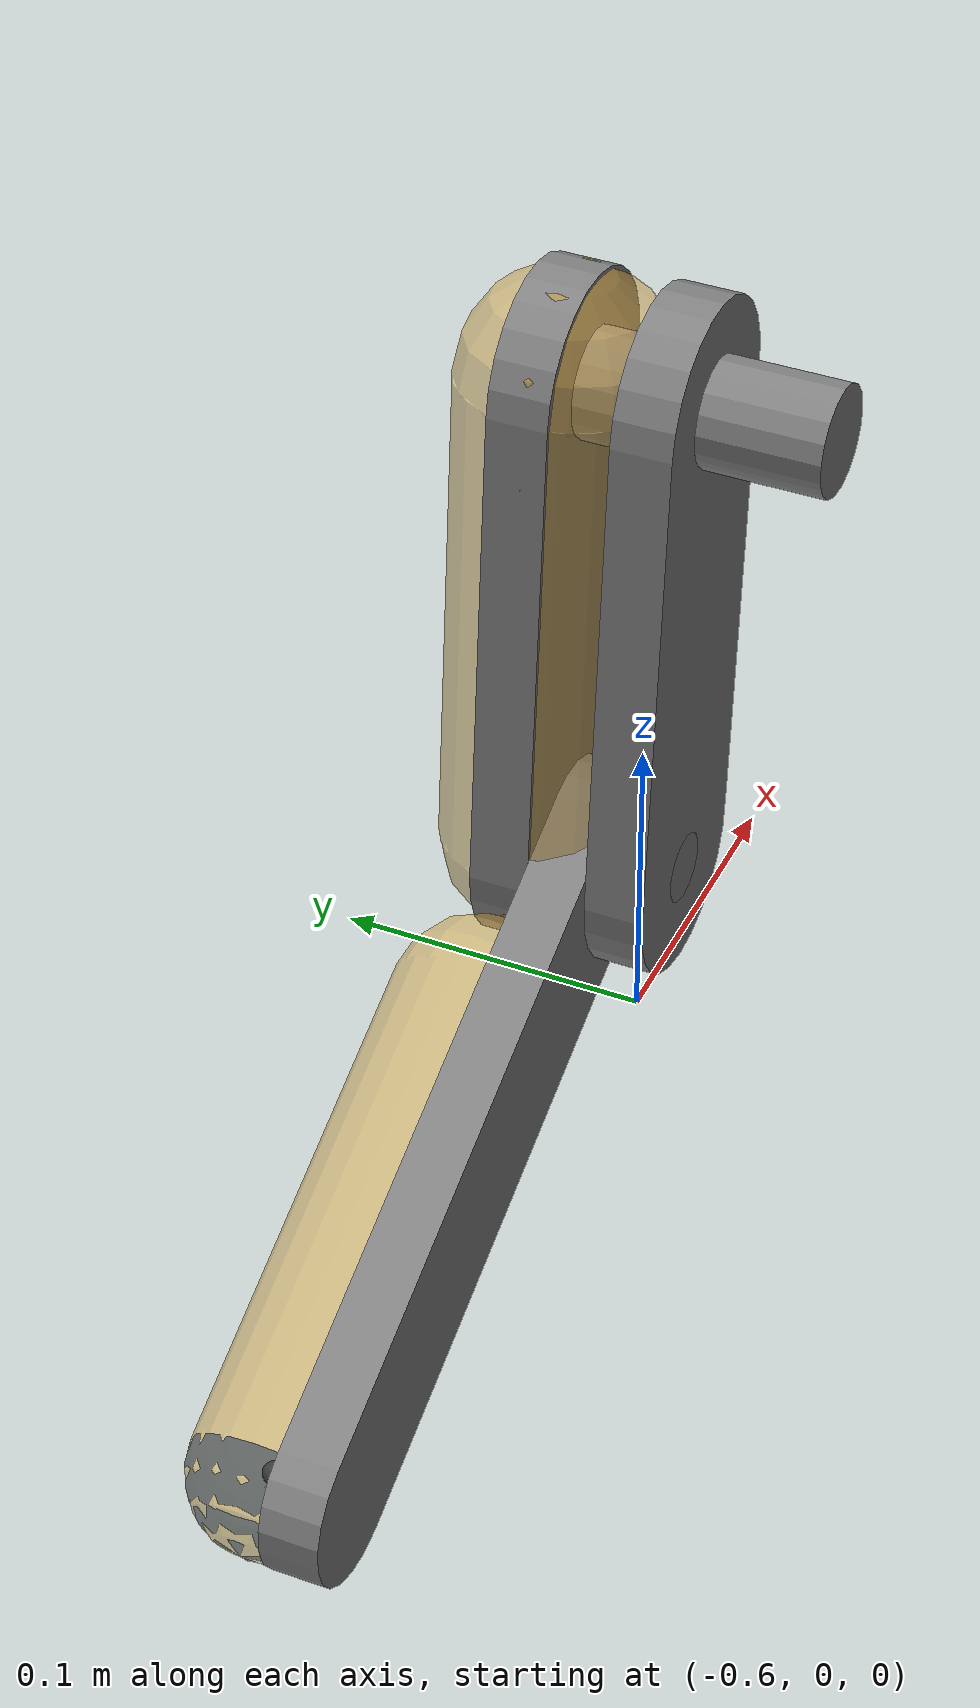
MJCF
<mujoco model="cheetah">
  <compiler angle="radian" meshdir="meshes/" inertiafromgeom="false"/>

  <asset>
    <mesh name="bl_hip" file="bl_hip.STL"/>
    <mesh name="bl_knee" file="bl_knee.STL"/>
  </asset>

  <worldbody>
    <body name="bl_hip" pos="-0.28023 0.1375 0" quat="0.999048 0 0.0436192 0">
      <inertial pos="-1.5467e-06 -0.0036898 -0.092943" quat="0.999589 0.0286807 1.42074e-05 -8.99596e-06" mass="0.40409" diaginertia="0.0030903 0.00299916 0.000578271"/>
      <joint name="bl_hip_joint" pos="0 0 0" axis="0 1 0"/>
      <geom type="mesh" mesh="bl_hip"/>
      <geom type="capsule" size="0.045" fromto="0 0.0225 0 0 0.0225 -0.21" group="0" contype="1" conaffinity="1"  rgba="0.85 0.65 0.25 0.5"/>
      <body name="bl_knee" pos="0 0 -0.21" quat="0.965926 0 -0.25882 0">
        <inertial pos="-0.136981 0 0" quat="0.5 0.5 0.5 0.5" mass="0.191716" diaginertia="0.00208985 0.00203485 8.82166e-05"/>
        <joint name="bl_knee_joint" pos="0 0 0" axis="0 1 0"/>
        <geom type="mesh" mesh="bl_knee"/>
        <geom type="capsule" size="0.035" fromto="-0.08 0.0225 0 -0.29 0.0225 0" group="0" contype="1" conaffinity="1"  rgba="0.85 0.65 0.25 0.5"/>
        <body name="bl_foot" pos="-0.29 0.0225 0">
          <inertial pos="0 0 0" mass="0.001" diaginertia="0.001 0.001 0.001"/>
          <geom group="1" type="sphere" size="0.035" solimp="0.015 1 0.031" friction="0.8 0.02 0.01" rgba="0 0 0 0.5"/>
          <site name="bl_foot"/>
        </body>
      </body>
    </body>
  </worldbody>

  <actuator>
    <general name="bl_hip_act" joint="bl_hip_joint"/>
    <general name="bl_knee_act" joint="bl_knee_joint"/>
  </actuator>

  <sensor>
    <jointpos joint="bl_hip_joint" name="bl_hip_pos"/>
    <jointpos joint="bl_knee_joint" name="bl_knee_pos"/>
    <jointvel joint="bl_hip_joint" name="bl_hip_vel"/>
    <jointvel joint="bl_knee_joint" name="bl_knee_vel"/>
  </sensor>
</mujoco>
